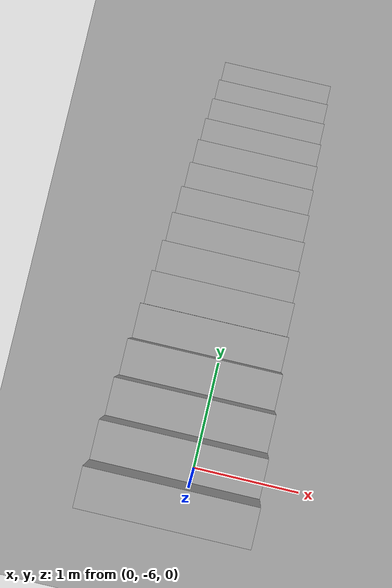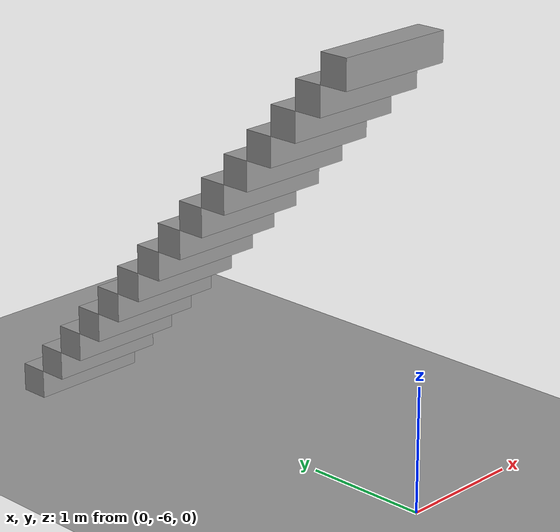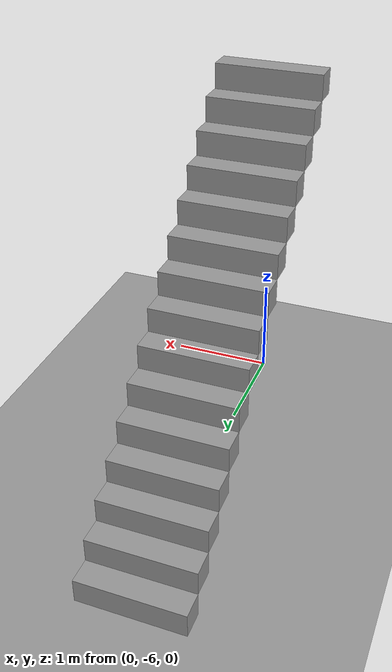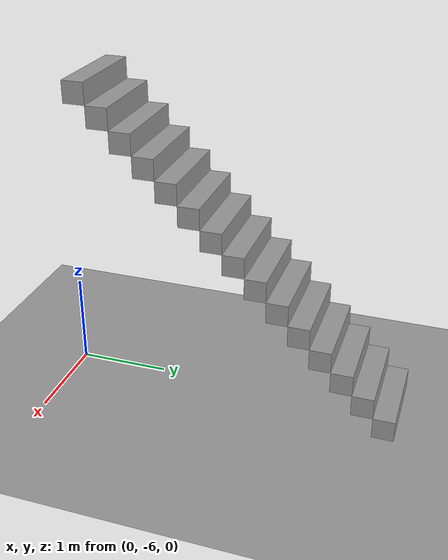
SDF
<sdf version="1.6">
 <world name="default">
  <light name="sun" type="directional">
   <pose>0 0 10 0 -0 0</pose>
   <diffuse>0.8 0.8 0.8 1</diffuse>
   <specular>0.2 0.2 0.2 1</specular>
   <attenuation>
    <range>1000</range>
    <constant>0.9</constant>
    <linear>0.01</linear>
    <quadratic>0.001</quadratic>
   </attenuation>
   <direction>0.5 0.1 -0.9</direction>
  </light>
  <scene><ambient>0.4 0.4 0.4 1</ambient><background>0.7 0.7 0.7 1</background><shadows>1</shadows></scene>
  <physics name="default_physics" default="0" type="ode">
   <max_step_size>0.01</max_step_size>
   <real_time_factor>1</real_time_factor>
   <real_time_update_rate>100</real_time_update_rate>
  </physics>
  <model name="ground_plane_0">
   <static>1</static>
   <link name="link">
    <collision name="collision">
     <geometry><plane><normal>0 0 1</normal><size>100 100</size></plane></geometry>
     <surface><friction><ode><mu>100</mu><mu2>50</mu2></ode></friction></surface>
    </collision>
    <visual name="visual">
     <cast_shadows>0</cast_shadows>
     <geometry><plane><normal>0 0 1</normal><size>100 100</size></plane></geometry>
     <material>
      <script><uri>file://media/materials/scripts/gazebo.material</uri><name>Gazebo/Grey</name></script>
     </material>
    </visual>
    <velocity_decay><linear>0</linear><angular>0</angular></velocity_decay>
   </link>
   <pose>0.497681 0 0 0 -0 0</pose>
  </model>
  <gravity>0 0 -9.8</gravity>
  <magnetic_field>6e-06 2.3e-05 -4.2e-05</magnetic_field>
  <atmosphere type="adiabatic"/>
  <spherical_coordinates>
   <surface_model>EARTH_WGS84</surface_model>
   <latitude_deg>0</latitude_deg>
   <longitude_deg>0</longitude_deg>
   <elevation>0</elevation>
   <heading_deg>0</heading_deg>
  </spherical_coordinates>
  <model name="StairCase-v0_0">
   <pose>-0.07059 -4.01898 0 0 -0 0</pose>
   <link name="Stairs_1">
    <visual name="Stairs_1_Visual_0">
     <pose>0 1.63333 0.116667 0 -0 0</pose>
     <geometry><box><size>1 0.233333 0.233333</size></box></geometry>
     <material>
      <script><uri>file://media/materials/scripts/gazebo.material</uri><name>Gazebo/Grey</name></script>
      <ambient>0.0352941 0.0352941 0.0352941 1</ambient>
     </material>
    </visual>
    <collision name="Stairs_1_Collision_0">
     <geometry><box><size>1 0.233333 0.233333</size></box></geometry>
     <pose>0 1.63333 0.116667 0 -0 0</pose>
    </collision>
    <visual name="Stairs_1_Visual_1">
     <pose>0 1.4 0.35 0 -0 0</pose>
     <geometry><box><size>1 0.233333 0.233333</size></box></geometry>
     <material>
      <script><uri>file://media/materials/scripts/gazebo.material</uri><name>Gazebo/Grey</name></script>
      <ambient>0.0352941 0.0352941 0.0352941 1</ambient>
     </material>
    </visual>
    <collision name="Stairs_1_Collision_1">
     <geometry><box><size>1 0.233333 0.233333</size></box></geometry>
     <pose>0 1.4 0.35 0 -0 0</pose>
    </collision>
    <visual name="Stairs_1_Visual_2">
     <pose>0 1.16667 0.583333 0 -0 0</pose>
     <geometry><box><size>1 0.233333 0.233333</size></box></geometry>
     <material>
      <script><uri>file://media/materials/scripts/gazebo.material</uri><name>Gazebo/Grey</name></script>
      <ambient>0.0352941 0.0352941 0.0352941 1</ambient>
     </material>
    </visual>
    <collision name="Stairs_1_Collision_2">
     <geometry><box><size>1 0.233333 0.233333</size></box></geometry>
     <pose>0 1.16667 0.583333 0 -0 0</pose>
    </collision>
    <visual name="Stairs_1_Visual_3">
     <pose>0 0.933333 0.816667 0 -0 0</pose>
     <geometry><box><size>1 0.233333 0.233333</size></box></geometry>
     <material>
      <script><uri>file://media/materials/scripts/gazebo.material</uri><name>Gazebo/Grey</name></script>
      <ambient>0.0352941 0.0352941 0.0352941 1</ambient>
     </material>
    </visual>
    <collision name="Stairs_1_Collision_3">
     <geometry><box><size>1 0.233333 0.233333</size></box></geometry>
     <pose>0 0.933333 0.816667 0 -0 0</pose>
    </collision>
    <visual name="Stairs_1_Visual_4">
     <pose>0 0.7 1.05 0 -0 0</pose>
     <geometry><box><size>1 0.233333 0.233333</size></box></geometry>
     <material>
      <script><uri>file://media/materials/scripts/gazebo.material</uri><name>Gazebo/Grey</name></script>
      <ambient>0.0352941 0.0352941 0.0352941 1</ambient>
     </material>
    </visual>
    <collision name="Stairs_1_Collision_4">
     <geometry><box><size>1 0.233333 0.233333</size></box></geometry>
     <pose>0 0.7 1.05 0 -0 0</pose>
    </collision>
    <visual name="Stairs_1_Visual_5">
     <pose>0 0.466667 1.28333 0 -0 0</pose>
     <geometry><box><size>1 0.233333 0.233333</size></box></geometry>
     <material>
      <script><uri>file://media/materials/scripts/gazebo.material</uri><name>Gazebo/Grey</name></script>
      <ambient>0.0352941 0.0352941 0.0352941 1</ambient>
     </material>
    </visual>
    <collision name="Stairs_1_Collision_5">
     <geometry><box><size>1 0.233333 0.233333</size></box></geometry>
     <pose>0 0.466667 1.28333 0 -0 0</pose>
    </collision>
    <visual name="Stairs_1_Visual_6">
     <pose>0 0.233333 1.51667 0 -0 0</pose>
     <geometry><box><size>1 0.233333 0.233333</size></box></geometry>
     <material>
      <script><uri>file://media/materials/scripts/gazebo.material</uri><name>Gazebo/Grey</name></script>
      <ambient>0.0352941 0.0352941 0.0352941 1</ambient>
     </material>
    </visual>
    <collision name="Stairs_1_Collision_6">
     <geometry><box><size>1 0.233333 0.233333</size></box></geometry>
     <pose>0 0.233333 1.51667 0 -0 0</pose>
    </collision>
    <visual name="Stairs_1_Visual_7">
     <pose>0 0 1.75 0 -0 0</pose>
     <geometry><box><size>1 0.233333 0.233333</size></box></geometry>
     <material>
      <script><uri>file://media/materials/scripts/gazebo.material</uri><name>Gazebo/Grey</name></script>
      <ambient>0.0352941 0.0352941 0.0352941 1</ambient>
     </material>
    </visual>
    <collision name="Stairs_1_Collision_7">
     <geometry><box><size>1 0.233333 0.233333</size></box></geometry>
     <pose>0 0 1.75 0 -0 0</pose>
    </collision>
    <visual name="Stairs_1_Visual_8">
     <pose>0 -0.233333 1.98333 0 -0 0</pose>
     <geometry><box><size>1 0.233333 0.233333</size></box></geometry>
     <material>
      <script><uri>file://media/materials/scripts/gazebo.material</uri><name>Gazebo/Grey</name></script>
      <ambient>0.0352941 0.0352941 0.0352941 1</ambient>
     </material>
    </visual>
    <collision name="Stairs_1_Collision_8">
     <geometry><box><size>1 0.233333 0.233333</size></box></geometry>
     <pose>0 -0.233333 1.98333 0 -0 0</pose>
    </collision>
    <visual name="Stairs_1_Visual_9">
     <pose>0 -0.466667 2.21667 0 -0 0</pose>
     <geometry><box><size>1 0.233333 0.233333</size></box></geometry>
     <material>
      <script><uri>file://media/materials/scripts/gazebo.material</uri><name>Gazebo/Grey</name></script>
      <ambient>0.0352941 0.0352941 0.0352941 1</ambient>
     </material>
    </visual>
    <collision name="Stairs_1_Collision_9">
     <geometry><box><size>1 0.233333 0.233333</size></box></geometry>
     <pose>0 -0.466667 2.21667 0 -0 0</pose>
    </collision>
    <visual name="Stairs_1_Visual_10">
     <pose>0 -0.7 2.45 0 -0 0</pose>
     <geometry><box><size>1 0.233333 0.233333</size></box></geometry>
     <material>
      <script><uri>file://media/materials/scripts/gazebo.material</uri><name>Gazebo/Grey</name></script>
      <ambient>0.0352941 0.0352941 0.0352941 1</ambient>
     </material>
    </visual>
    <collision name="Stairs_1_Collision_10">
     <geometry><box><size>1 0.233333 0.233333</size></box></geometry>
     <pose>0 -0.7 2.45 0 -0 0</pose>
    </collision>
    <visual name="Stairs_1_Visual_11">
     <pose>0 -0.933333 2.68333 0 -0 0</pose>
     <geometry><box><size>1 0.233333 0.233333</size></box></geometry>
     <material>
      <script><uri>file://media/materials/scripts/gazebo.material</uri><name>Gazebo/Grey</name></script>
      <ambient>0.0352941 0.0352941 0.0352941 1</ambient>
     </material>
    </visual>
    <collision name="Stairs_1_Collision_11">
     <geometry><box><size>1 0.233333 0.233333</size></box></geometry>
     <pose>0 -0.933333 2.68333 0 -0 0</pose>
    </collision>
    <visual name="Stairs_1_Visual_12">
     <pose>0 -1.16667 2.91667 0 -0 0</pose>
     <geometry><box><size>1 0.233333 0.233333</size></box></geometry>
     <material>
      <script><uri>file://media/materials/scripts/gazebo.material</uri><name>Gazebo/Grey</name></script>
      <ambient>0.0352941 0.0352941 0.0352941 1</ambient>
     </material>
    </visual>
    <collision name="Stairs_1_Collision_12">
     <geometry><box><size>1 0.233333 0.233333</size></box></geometry>
     <pose>0 -1.16667 2.91667 0 -0 0</pose>
    </collision>
    <visual name="Stairs_1_Visual_13">
     <pose>0 -1.4 3.15 0 -0 0</pose>
     <geometry><box><size>1 0.233333 0.233333</size></box></geometry>
     <material>
      <script><uri>file://media/materials/scripts/gazebo.material</uri><name>Gazebo/Grey</name></script>
      <ambient>0.0352941 0.0352941 0.0352941 1</ambient>
     </material>
    </visual>
    <collision name="Stairs_1_Collision_13">
     <geometry><box><size>1 0.233333 0.233333</size></box></geometry>
     <pose>0 -1.4 3.15 0 -0 0</pose>
    </collision>
    <visual name="Stairs_1_Visual_14">
     <pose>0 -1.63333 3.38333 0 -0 0</pose>
     <geometry><box><size>1 0.233333 0.233333</size></box></geometry>
     <material>
      <script><uri>file://media/materials/scripts/gazebo.material</uri><name>Gazebo/Grey</name></script>
      <ambient>0.0352941 0.0352941 0.0352941 1</ambient>
     </material>
    </visual>
    <collision name="Stairs_1_Collision_14">
     <geometry><box><size>1 0.233333 0.233333</size></box></geometry>
     <pose>0 -1.63333 3.38333 0 -0 0</pose>
    </collision>
   </link>
   <static>1</static>
  </model>
 </world>
</sdf>
